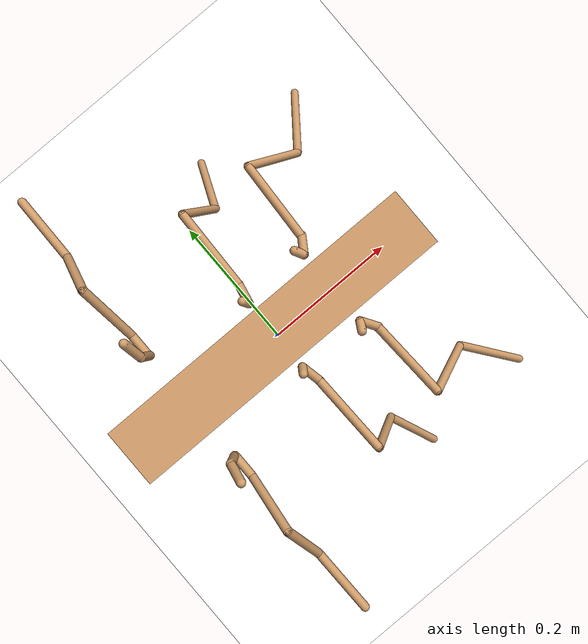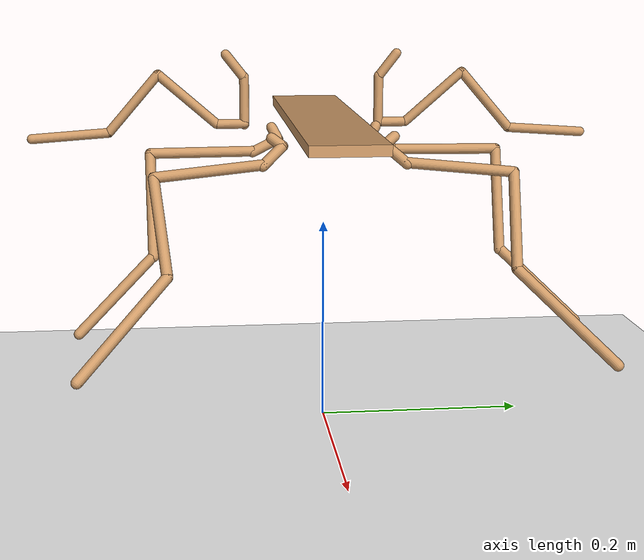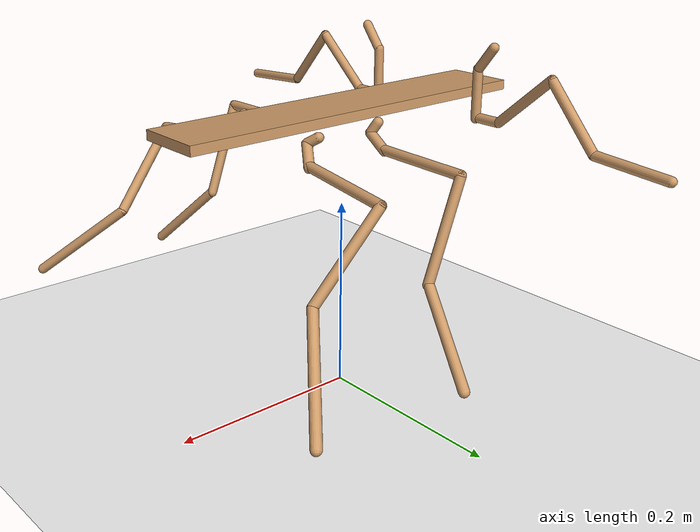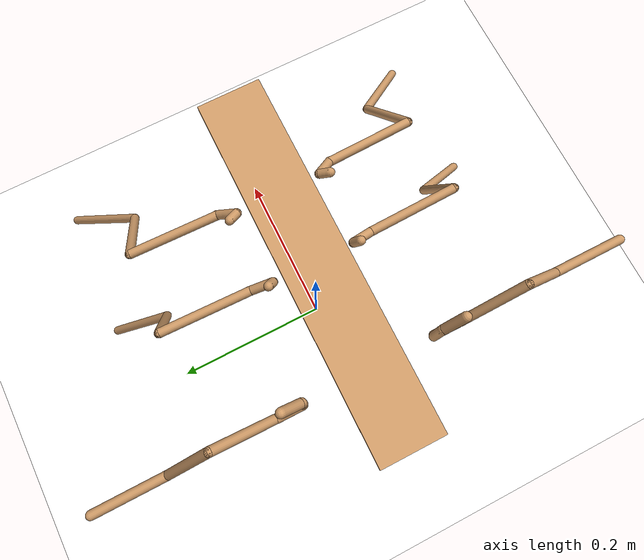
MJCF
<?xml version='1.0' encoding='utf-8'?>
<mujoco model="Drosophibot II">
   <default>
      <joint type="hinge" damping="0.2" stiffness="1" armature=".01" />
      <site size="0.001" />
      <tendon width="0.0004" rgba="1 0 0 1" />
      <position kp='50' />
      <default class="muscle">
         <muscle ctrllimited="true" ctrlrange="0 1" />
      </default>
   </default>
   <option gravity="0 0 -9.81" />
   <worldbody>
      <geom name="floor" pos="0 0 0" euler="0 0 0" size="2 2 0.25" type="plane" material="MatPlane" rgba="1 1 1 1" condim="3" />
      <light name="spotlight" mode="targetbodycom" target="Thorax" diffuse=".8 .8 .8" specular="0.3 0.3 0.3" pos="0 -6 4" cutoff="30"/>
      <body name="Thorax" pos="0.0 -0.0 0.3" quat="4.329637285359678e-17 4.329637285359677e-17 -0.7071067811865475 -0.7071067811865476">
         <freejoint name="root"/>
         <geom type="box" size="0.2 0.005 0.035" mass="2.567" material='body'/>
         <body name="LF_ThCBridge" pos="0.1155 0.04544 -0.08114" quat="0.30995045526580134 -0.6354753171277976 0.31001359029812403 -0.6356047596048306">
            <geom type="capsule" size="0.005 0.015" mass="0.0873" material='body' euler='0 90 0'/>
            <joint pos="-0.015 0.0 0.0" name="LF_ThC1" type="hinge" axis="-0.6156309087425843 0.7880345685043321 0.00032100307035379597" range="-0.2618 0.7854"/>
            <body name="LF_Coxa" pos="0.035 0.015 0.0" quat="0.9455177756010618 -3.32081872221739e-05 -9.644281344577199e-05 0.3255704618334108">
               <geom type="capsule" size="0.005 0.025" mass="0.1396" material='body' euler='0 90 0'/>
               <joint pos="-0.025 0.0 0.0" name="LF_ThC3" type="hinge" axis="0.9999999170344522 -0.0004073463989414262 0.0" range="-0.6981 1.8326" />
               <body name="LF_Trochanter" pos="0.024066 0.014262 -0.000817" quat="0.7070347681678408 0.0 0.0 0.7071787868720665">
                  <geom type="capsule" size="0.005 0.014" mass="0.0064" material='body' euler='0 90 0'/>
                  <joint pos="-0.014 0.0 0.0" name="LF_CTr" type="hinge" axis="-0.00020367320369518715 -0.00020367319947067752 0.9999999585172261" range="-0.8203 1.7453" />
                  <body name="LF_Femur" pos="0.045376 0.026356 0.00012" quat="0.9366730635938317 0.0 0.0 0.3502050427074768">
                     <geom type="capsule" size="0.005 0.04" mass="0.1781" material='body' euler='0 90 0' />
                     <joint pos="-0.04 0.0 0.0" name="LF_TrF" type="hinge" axis="-0.9999999170344522 -0.00040734636514570913 1.6593108873054758e-07"  range="-1.5708 1.0472"/>
                     <body name="LF_Tibia" pos="0.04 -0.04 0.0" quat="0.7070347681678408 0.0 0.0 -0.7071787868720665">
                        <geom type="capsule" size="0.005 0.04" mass="0.023600000000000003" material='body' euler='0 90 0' />
                        <joint pos="-0.04 0.0 0.0" name="LF_FTi" type="hinge" axis="-0.00020367320369518715 -0.00020367319947067752 0.9999999585172261" range="-1.0821 1.2741" />
                        <body name="LF_Tarsus" pos="0.0683 0.0283 0.0" quat="0.923879181092213 0.0 0.0 0.3826842807646818">
                           <geom type="capsule" size="0.005 0.04" mass="0.0207" material='body' euler='0 90 0' />
                           <body name="LF_Tip" pos="0.04 -4.78e-07 0.0" quat="1.0 0.0 0.0 0.0">
                              <geom type="box" size="0.0005 0.0005 0.0005" mass="0.0001" material='body' />
                           </body>
                           <site name = "end_effector_5" pos="0.04 -4.78e-07 0.0" quat = "1.0 0.0 0.0 0.0"/>
                        </body>
                     </body>
                  </body>
               </body>
            </body>
         </body>
         <body name="RF_ThCBridge" pos="0.1155 0.04555 0.08114" quat="0.30995045526580134 0.6354753171277976 -0.31001359029812403 -0.6356047596048306">
            <geom type="capsule" size="0.005 0.015" mass="0.0873" material='body' euler='0 90 0' />
            <joint pos="-0.015 0.0 0.0" name="RF_ThC1" type="hinge" axis="-0.6156624296354265 0.7880099426396044 0.000320993039095646" range="-0.7854 0.2618" />
            <body name="RF_Coxa" pos="0.035 0.015 0.0" quat="0.9455177805196452 0.0 0.0 0.32557046352702834">
               <geom type="capsule" size="0.005 0.025" mass="0.1396" material='body' euler='0 90 0' />
               <joint pos="-0.025 0.0 0.0" name="RF_ThC3" type="hinge" axis="0.9999999170344522 -0.0004073463989414262 0.0" range="-1.8326 0.6981"/>
               <body name="RF_Trochanter" pos="0.024024 0.014241 -0.000817" quat="0.7070347681678408 0.0 0.0 0.7071787868720665">
                  <geom type="capsule" size="0.005 0.014" mass="0.0064" material='body' euler='0 90 0' />
                  <joint pos="-0.014 0.0 0.0" name="RF_CTr" type="hinge" axis="-0.00020367320369518715 -0.00020367319947067752 0.9999999585172261" range="-0.8203 1.7453" />
                  <body name="RF_Femur" pos="0.045376 0.026356 0.00012" quat="0.9366730635938317 0.0 0.0 0.3502050427074768">
                     <geom type="capsule" size="0.005 0.04" mass="0.1781" material='body' euler='0 90 0' />
                     <joint pos="-0.04 0.0 0.0" name="RF_TrF" type="hinge" axis="-0.9999999170344522 -0.00040734636514570913 1.6593108873054758e-07" range="-0.0472 1.5708" />
                     <body name="RF_Tibia" pos="0.04 -0.04 0.0" quat="0.7070347681678408 0.0 0.0 -0.7071787868720665">
                        <geom type="capsule" size="0.005 0.04" mass="0.023600000000000003" material='body' euler='0 90 0' />
                        <joint pos="-0.04 0.0 0.0" name="RF_FTi" type="hinge" axis="-0.00020367320369518715 -0.00020367319947067752 0.9999999585172261" range="-1.0821 1.2741" />
                        <body name="RF_Tarsus" pos="0.0683 0.0283 0.0" quat="0.923879181092213 0.0 0.0 0.3826842807646818">
                           <geom type="capsule" size="0.005 0.04" mass="0.0207" material='body' euler='0 90 0' />
                           <body name="RF_Tip" pos="0.04 0.0 0.0" quat="1.0 0.0 0.0 0.0">
                              <geom type="box" size="0.0005 0.0005 0.0005" mass="0.0001" material='body' />
                           </body>
                           <site name = "end_effector_6" pos="0.04 0.0 0.0" quat = "1.0 0.0 0.0 0.0"/>
                        </body>
                     </body>
                  </body>
               </body>
            </body>
         </body>
         <body name="LM_Coxa" pos="-0.001778 -0.010481 -0.048125" quat="0.7955889234425152 -0.12360354007976837 0.19609177882731638 0.5597396216560586">
            <geom type="capsule" size="0.005 0.0065" mass="0.135" material='body' euler='0 90 0' />
            <body name="LM_Trochanter" pos="-0.0065 -0.00014 -0.014" quat="0.7070347681678408 0.0 -0.7071787868720665 0.0">
               <geom type="capsule" size="0.005 0.014" mass="0.0064" material='body' euler='0 90 0' />
               <joint pos="0.014 -3.49e-07 3.02e-07" name="LM_CTr" type="hinge" axis="-0.00020367320369509736 -0.9999998962930668 0.0004073463904924969"  range="-1.0472 1.0472"/>
               <body name="LM_Femur" pos="-0.057 0.0 -0.022" quat="0.9743695705112627 0.0 -0.22495319526892144 0.0">
                  <geom type="capsule" size="0.005 0.05" mass="0.18409999999999999" material='body' euler='0 90 0' />
                  <joint pos="0.05 0.0 0.0" name="LM_TrF" type="hinge" axis="1.0 0.0 0.0"  range="-1.5708 1.5708"/>
                  <body name="LM_Tibia" pos="-0.05 0.0 0.05" quat="0.7070347681678408 0.0 -0.7071787868720665 0.0">
                     <geom type="capsule" size="0.005 0.05" mass="0.0297" material='body' euler='0 90 0' />
                     <joint pos="-0.05 0.0 0.0" name="LM_FTi" type="hinge" axis="-0.00020367320369518715 -0.9999999792586128 0.0"  range="-1.5708 1.5708"/>
                     <body name="LM_Tarsus" pos="0.085 0.0 0.036" quat="0.923879181092213 0.0 -0.3826842807646818 0.0">
                        <geom type="capsule" size="0.005 0.05" mass="0.0252" material='body' euler='0 90 0' />
                        <body name="LM_Tip" pos="0.05 0.0 0.0" quat="1.0 0.0 0.0 0.0">
                           <geom type="box" size="0.0005 0.0005 0.0005" mass="0.0001" material='body' />
                        </body>
                        <site name = "end_effector_3" pos="0.05 0.0 0.0" quat = "1.0 0.0 0.0 0.0"/>
                     </body>
                  </body>
               </body>
            </body>
         </body>
         <body name="RM_Coxa" pos="-0.001778 -0.010481 0.048125" quat="0.7955889234425152 0.12360354007976837 -0.19609177882731638 0.5597396216560586">
            <geom type="capsule" size="0.005 0.0065" mass="0.135" material='body' euler='0 90 0'/>
            <body name="RM_Trochanter" pos="-0.0065 0.0 0.014" quat="0.7070347681678408 0.0 -0.7071787868720665 0.0">
               <geom type="capsule" size="0.005 0.014" mass="0.0064" material='body' euler='0 90 0' />
               <joint pos="-0.014 0.0 0.0" name="RM_CTr" type="hinge" axis="-0.00020367320369509736 0.9999998962930668 -0.0004073463904924969" range="-1.0472 1.0472"/>
               <body name="RM_Femur" pos="0.057 0.0 -0.022" quat="0.9743695705112627 0.0 0.22495319526892144 0.0">
                  <geom type="capsule" size="0.005 0.05" mass="0.18409999999999999" material='body' euler='0 90 0'/>
                  <joint pos="-0.05 0.0 0.0" name="RM_TrF" type="hinge" axis="-0.9999999170344522 8.296554608610857e-08 -0.0004073463904924969"  range="-1.5708 1.5708"/>
                  <body name="RM_Tibia" pos="0.05 0.0 0.05" quat="0.7070347681678408 0.0 0.7071787868720665 0.0">
                     <geom type="capsule" size="0.005 0.05" mass="0.0297" material='body' euler='0 90 0' />
                     <joint pos="0.05 0.0 0.0" name="RM_FTi" type="hinge" axis="-0.00020367320369518715 0.9999999792586128 0.0" range="-1.5798 1.5708" />
                     <body name="RM_Tarsus" pos="-0.085 0.0 0.036" quat="0.923879181092213 0.0 0.3826842807646818 0.0">
                        <geom type="capsule" size="0.005 0.05" mass="0.0252" material='body' euler='0 90 0' />
                        <body name="RM_Tip" pos="-0.05 0.0 0.0" quat="1.0 0.0 0.0 0.0">
                           <geom type="box" size="0.0005 0.0005 0.0005" mass="0.0001" material='body' />
                           </body>
                           <site name = "end_effector_4" pos="-0.05 0.0 0.0" quat = "1.0 0.0 0.0 0.0"/>
                     </body>
                  </body>
               </body>
            </body>
         </body>
         <body name="LH_Coxa" pos="-0.080684 -0.008347 -0.0518" quat="0.8311608157551661 -0.1760675001995322 0.35952145788457907 0.3858966896038909">
            <geom type="capsule" size="0.005 0.0065" mass="0.135" material='body' euler='0 90 0' />
            <body name="LH_Trochanter" pos="-0.0065 0.0 -0.014" quat="0.7070347681678408 0.0 0.7071787868720665 0.0">
               <geom type="capsule" size="0.005 0.014" mass="0.0064" material='body' euler='0 90 0' />
               <joint pos="-0.014 0.0 0.0" name="LH_CTr" type="hinge" axis="-0.00020367320369518715 -0.9999999792586128 0.0"  range = "-1.5708 1.5708"/>
               <body name="LH_Femur" pos="0.049701 0.0 0.0328" quat="-0.0001907752036771328 0.9366730441659331 -7.13273829984384e-05 0.35020503544373843">
                  <geom type="capsule" size="0.005 0.05" mass="0.18409999999999999" material='body' euler='0 90 0' />
                  <joint pos="-0.05 0.0 0.0" name="LH_TrF" type="hinge" axis="-0.9999999170344522 8.296554608610857e-08 -0.0004073463904924969" range = "-1.0472 1.0472"/>
                  <body name="LH_Tibia" pos="0.05 0.0 0.05" quat="0.7070347681678408 0.0 0.7071787868720665 0.0">
                     <geom type="capsule" size="0.005 0.05" mass="0.0297" material='body' euler='0 90 0' />
                     <joint pos="0.05 0.0 0.0" name="LH_FTi" type="hinge" axis="-0.00020367320369518715 0.9999999792586128 0.0"  range="-1.5708 1.5708"/>
                     <body name="LH_Tarsus" pos="-0.0924 -0.000135 0.0424" quat="0.923879181092213 0.0 0.3826842807646818 0.0">
                        <geom type="capsule" size="0.005 0.06" mass="0.0252" material='body' euler='0 90 0' />
                        <body name="LH_Tip" pos="-0.06 0.0 0.0" quat="1.0 0.0 0.0 0.0">
                           <geom type="box" size="0.0005 0.0005 0.0005" mass="0.0001" material='body' />
                           </body>
                           <site name = "end_effector_1" pos="-0.06 0.0 0.0" quat = "1.0 0.0 0.0 0.0"/>
                     </body>
                  </body>
               </body>
            </body>
         </body>
         <body name="RH_Coxa" pos="-0.080684 -0.008347 0.0518" quat="0.8311608157551661 0.1760675001995322 -0.35952145788457907 0.3858966896038909">
            <geom type="capsule" size="0.005 0.0065" mass="0.135" material='body' euler='0 90 0' />
            <body name="RH_Trochanter" pos="-0.0065 -2.65e-07 0.014" quat="0.7070347681678408 0.0 -0.7071787868720665 0.0">
               <geom type="capsule" size="0.005 0.014" mass="0.0064" material='body' euler='0 90 0' />
               <joint pos="-0.014 0.0 0.0" name="RH_CTr" type="hinge" axis="-0.00020367320369509736 0.9999998962930668 0.0004073463904924969" range = "-1.5708 1.5708"/>
               <body name="RH_Femur" pos="0.0497 0.0 -0.0328" quat="-0.0001907752036771328 -0.9366730441659331 7.13273829984384e-05 0.35020503544373843">
                  <geom type="capsule" size="0.005 0.05" mass="0.18409999999999999" material='body' euler='0 90 0' />
                  <joint pos="-0.05 0.0 0.0" name="RH_TrF" type="hinge" axis="-0.9999999170344522 -8.296554608610857e-08 -0.0004073463904924969"  range="-1.0472 1.0472"/>
                  <body name="RH_Tibia" pos="0.05 0.0 -0.05" quat="0.7070347681678408 0.0 0.7071787868720665 0.0">
                     <geom type="capsule" size="0.005 0.05" mass="0.0297" material='body' euler='0 90 0' />
                     <joint pos="-0.05 0.0 0.0" name="RH_FTi" type="hinge" axis="-0.00020367320369518715 -0.9999999792586128 0.0"  range="-1.5708 1.5708"/>
                     <body name="RH_Tarsus" pos="0.0924 0.0 0.0424" quat="0.923879181092213 0.0 -0.3826842807646818 0.0">
                        <geom type="capsule" size="0.005 0.06" mass="0.0252" material='body' euler='0 90 0' />
                        <body name="RH_Tip" pos="0.06 0.0 0.0" quat="1.0 0.0 0.0 0.0">
                           <geom type="box" size="0.0005 0.0005 0.0005" mass="0.0001" material='body' />
                        </body>
                        <site name = "end_effector_2" pos="0.06 0.0 0.0" quat = "1.0 0.0 0.0 0.0"/>
                     </body>
                  </body>
               </body>
            </body>
         </body>
      </body>
   </worldbody>
   <asset>
      <texture name="grid" type="2d" builtin="checker" width="512" height="512" rgb1=".1 .2 .3" rgb2=".2 .3 .4"/>
      <material name="MatPlane" texture="grid" texrepeat="15 15" texuniform="true" reflectance="0"/>
      <texture type="skybox" builtin="gradient" rgb1=".3 .5 .7" rgb2="0 0 0" width="32" height="512"/>
      <material name="body" texuniform="true" rgba="0.8 0.6 .4 1"/>
   </asset>
   <actuator>
      <position ctrllimited="false" name='LF_ThC1' joint='LF_ThC1' />
      <position ctrllimited="false" name='LF_ThC3' joint='LF_ThC3'/>
      <position ctrllimited="false" name="LF_CTr" joint="LF_CTr"/>
      <position ctrllimited="false" name="LF_TrF" joint="LF_TrF"/>
      <position ctrllimited="false" name="LF_FTi" joint="LF_FTi"/>
      <position ctrllimited="false" name='RF_ThC1' joint='RF_ThC1' />
      <position ctrllimited="false" name='RF_ThC3' joint='RF_ThC3'/>
      <position ctrllimited="false" name="RF_CTr" joint="RF_CTr"/>
      <position ctrllimited="false" name="RF_TrF" joint="RF_TrF"/>
      <position ctrllimited="false" name="RF_FTi" joint="RF_FTi"/>
      <position ctrllimited="false" name="LM_CTr" joint="LM_CTr"/>
      <position ctrllimited="false" name="LM_TrF" joint="LM_TrF"/>
      <position ctrllimited="false" name="LM_FTi" joint="LM_FTi"/>
      <position ctrllimited="false" name="RM_CTr" joint="RM_CTr"/>
      <position ctrllimited="false" name="RM_TrF" joint="RM_TrF"/>
      <position ctrllimited="false" name="RM_FTi" joint="RM_FTi"/>
      <position ctrllimited="false" name="LH_CTr" joint="LH_CTr"/>
      <position ctrllimited="false" name="LH_TrF" joint="LH_TrF"/>
      <position ctrllimited="false" name="LH_FTi" joint="LH_FTi"/>
      <position ctrllimited="false" name="RH_CTr" joint="RH_CTr"/>
      <position ctrllimited="false" name="RH_TrF" joint="RH_TrF"/>
      <position ctrllimited="false" name="RH_FTi" joint="RH_FTi"/>
   </actuator>

   <keyframe>

    <!-- The values below are split into rows for readibility: -->
      <!-- Thorax position -->
      <!-- Thorax orientation (quaternion) -->
      <!-- LF Angles -->
      <!-- RF Angles -->
      <!-- LM Angles -->
      <!-- RM Angles -->
      <!-- LH Angles -->
      <!-- RH Angles -->
      <key name="stand_clarus_tweaked" qpos="0.0 -0.0 0.3
         0 0 -0.70710 -0.70710
        -0.3412 -0.8797 0.2531 0.3343 -0.1862
         0.3412 0.8797 0.2531 -0.3343 -0.1862
         0.1132 -0.3192 0.0623
        0.1132 0.3192 0.0623
         0.239 0.1021 -0.4697
        0.239 -0.1021 -0.4697"
         ctrl="-0.3412 -0.8797 0.2531 0.3343 -0.1862
        0.3412 0.8797 0.2531 -0.3343 -0.1862
         0.1132 -0.3192 0.0623
         0.1132 0.3192 0.0623
         0.239 0.1021 -0.4697
         0.239 -0.1021 -0.4697"/>

  </keyframe>

</mujoco>
